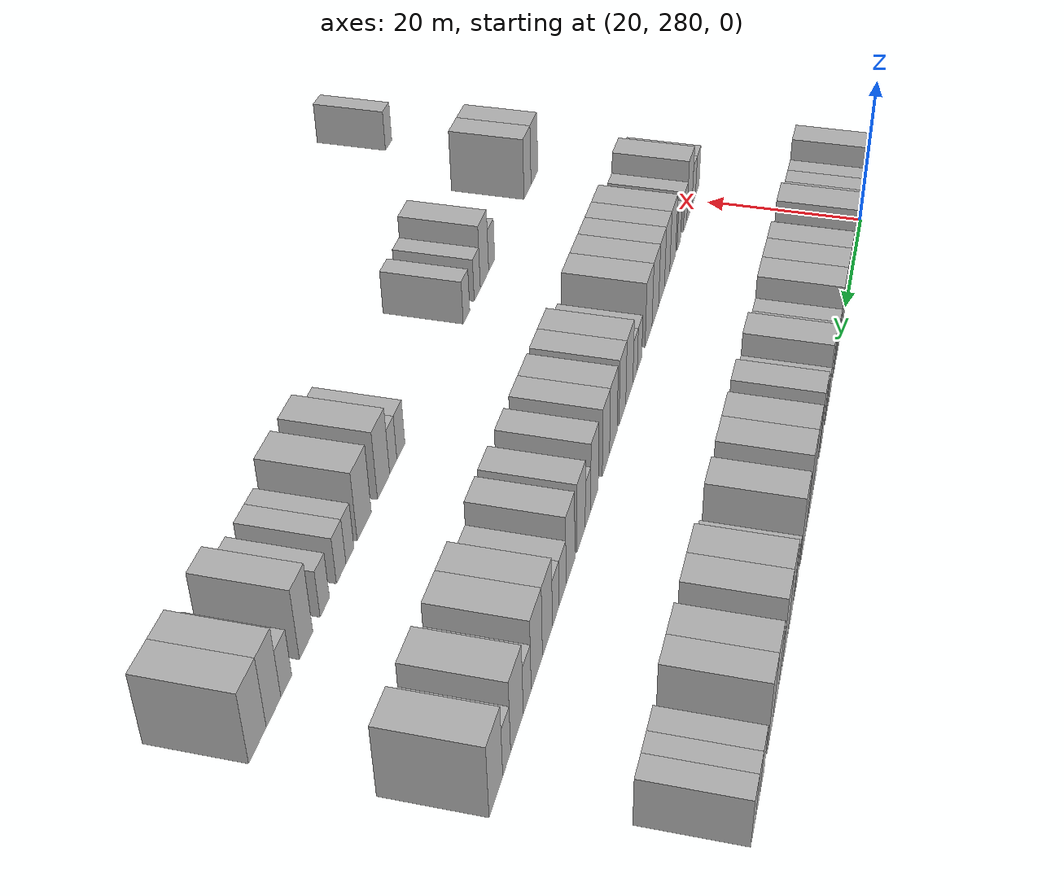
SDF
<sdf version="1.6">
 <world name="default">
  <model name="building_158">
   <static>1</static>
   <pose>25.0000 274.8598 0 0.000000 0.000000 0.000000</pose>
   <link name="link">
    <pose>0 0 4.50 0 0 0</pose>
    <collision name="collision"><geometry><box><size>10.0000 3.9772 9.0000</size></box></geometry></collision>
    <visual name="visual">
     <cast_shadows>0</cast_shadows>
     <geometry><box><size>10.0000 3.9772 9.0000</size></box></geometry>
     <material>
      <script>
       <uri>model://HANNAS_wall/materials/scripts</uri>
       <uri>model://HANNAS_wall/materials/textures</uri>
       <name>vrc/HANNAS_wall</name>
      </script>
     </material>
    </visual>
   </link>
  </model>
  <model name="building_159">
   <static>1</static>
   <pose>25.0000 278.1927 0 0.000000 0.000000 0.000000</pose>
   <link name="link">
    <pose>0 0 3.00 0 0 0</pose>
    <collision name="collision"><geometry><box><size>10.0000 2.6886 6.0000</size></box></geometry></collision>
    <visual name="visual">
     <cast_shadows>0</cast_shadows>
     <geometry><box><size>10.0000 2.6886 6.0000</size></box></geometry>
     <material>
      <script>
       <uri>model://HANNAS_wall/materials/scripts</uri>
       <uri>model://HANNAS_wall/materials/textures</uri>
       <name>vrc/HANNAS_wall</name>
      </script>
     </material>
    </visual>
   </link>
  </model>
  <model name="building_160">
   <static>1</static>
   <pose>25.0000 280.9946 0 0.000000 0.000000 0.000000</pose>
   <link name="link">
    <pose>0 0 3.00 0 0 0</pose>
    <collision name="collision"><geometry><box><size>10.0000 2.9151 6.0000</size></box></geometry></collision>
    <visual name="visual">
     <cast_shadows>0</cast_shadows>
     <geometry><box><size>10.0000 2.9151 6.0000</size></box></geometry>
     <material>
      <script>
       <uri>model://HANNAS_wall/materials/scripts</uri>
       <uri>model://HANNAS_wall/materials/textures</uri>
       <name>vrc/HANNAS_wall</name>
      </script>
     </material>
    </visual>
   </link>
  </model>
  <model name="building_161">
   <static>1</static>
   <pose>25.0000 283.9191 0 0.000000 0.000000 0.000000</pose>
   <link name="link">
    <pose>0 0 3.00 0 0 0</pose>
    <collision name="collision"><geometry><box><size>10.0000 2.9339 6.0000</size></box></geometry></collision>
    <visual name="visual">
     <cast_shadows>0</cast_shadows>
     <geometry><box><size>10.0000 2.9339 6.0000</size></box></geometry>
     <material>
      <script>
       <uri>model://HANNAS_wall/materials/scripts</uri>
       <uri>model://HANNAS_wall/materials/textures</uri>
       <name>vrc/HANNAS_wall</name>
      </script>
     </material>
    </visual>
   </link>
  </model>
  <model name="building_162">
   <static>1</static>
   <pose>25.0000 286.6835 0 0.000000 0.000000 0.000000</pose>
   <link name="link">
    <pose>0 0 3.00 0 0 0</pose>
    <collision name="collision"><geometry><box><size>10.0000 2.5950 6.0000</size></box></geometry></collision>
    <visual name="visual">
     <cast_shadows>0</cast_shadows>
     <geometry><box><size>10.0000 2.5950 6.0000</size></box></geometry>
     <material>
      <script>
       <uri>model://HANNAS_wall/materials/scripts</uri>
       <uri>model://HANNAS_wall/materials/textures</uri>
       <name>vrc/HANNAS_wall</name>
      </script>
     </material>
    </visual>
   </link>
  </model>
  <model name="building_163">
   <static>1</static>
   <pose>25.0000 290.1792 0 0.000000 0.000000 0.000000</pose>
   <link name="link">
    <pose>0 0 4.50 0 0 0</pose>
    <collision name="collision"><geometry><box><size>10.0000 4.3964 9.0000</size></box></geometry></collision>
    <visual name="visual">
     <cast_shadows>0</cast_shadows>
     <geometry><box><size>10.0000 4.3964 9.0000</size></box></geometry>
     <material>
      <script>
       <uri>model://HANNAS_wall/materials/scripts</uri>
       <uri>model://HANNAS_wall/materials/textures</uri>
       <name>vrc/HANNAS_wall</name>
      </script>
     </material>
    </visual>
   </link>
  </model>
  <model name="building_164">
   <static>1</static>
   <pose>25.0000 293.7986 0 0.000000 0.000000 0.000000</pose>
   <link name="link">
    <pose>0 0 3.00 0 0 0</pose>
    <collision name="collision"><geometry><box><size>10.0000 2.8426 6.0000</size></box></geometry></collision>
    <visual name="visual">
     <cast_shadows>0</cast_shadows>
     <geometry><box><size>10.0000 2.8426 6.0000</size></box></geometry>
     <material>
      <script>
       <uri>model://HANNAS_wall/materials/scripts</uri>
       <uri>model://HANNAS_wall/materials/textures</uri>
       <name>vrc/HANNAS_wall</name>
      </script>
     </material>
    </visual>
   </link>
  </model>
  <model name="building_165">
   <static>1</static>
   <pose>25.0000 299.0825 0 0.000000 0.000000 0.000000</pose>
   <link name="link">
    <pose>0 0 4.50 0 0 0</pose>
    <collision name="collision"><geometry><box><size>10.0000 3.7251 9.0000</size></box></geometry></collision>
    <visual name="visual">
     <cast_shadows>0</cast_shadows>
     <geometry><box><size>10.0000 3.7251 9.0000</size></box></geometry>
     <material>
      <script>
       <uri>model://HANNAS_wall/materials/scripts</uri>
       <uri>model://HANNAS_wall/materials/textures</uri>
       <name>vrc/HANNAS_wall</name>
      </script>
     </material>
    </visual>
   </link>
  </model>
  <model name="building_166">
   <static>1</static>
   <pose>25.0000 303.0248 0 0.000000 0.000000 0.000000</pose>
   <link name="link">
    <pose>0 0 4.50 0 0 0</pose>
    <collision name="collision"><geometry><box><size>10.0000 4.1596 9.0000</size></box></geometry></collision>
    <visual name="visual">
     <cast_shadows>0</cast_shadows>
     <geometry><box><size>10.0000 4.1596 9.0000</size></box></geometry>
     <material>
      <script>
       <uri>model://HANNAS_wall/materials/scripts</uri>
       <uri>model://HANNAS_wall/materials/textures</uri>
       <name>vrc/HANNAS_wall</name>
      </script>
     </material>
    </visual>
   </link>
  </model>
  <model name="building_167">
   <static>1</static>
   <pose>25.0000 307.2121 0 0.000000 0.000000 0.000000</pose>
   <link name="link">
    <pose>0 0 4.50 0 0 0</pose>
    <collision name="collision"><geometry><box><size>10.0000 4.2148 9.0000</size></box></geometry></collision>
    <visual name="visual">
     <cast_shadows>0</cast_shadows>
     <geometry><box><size>10.0000 4.2148 9.0000</size></box></geometry>
     <material>
      <script>
       <uri>model://HANNAS_wall/materials/scripts</uri>
       <uri>model://HANNAS_wall/materials/textures</uri>
       <name>vrc/HANNAS_wall</name>
      </script>
     </material>
    </visual>
   </link>
  </model>
  <model name="building_168">
   <static>1</static>
   <pose>25.0000 310.6309 0 0.000000 0.000000 0.000000</pose>
   <link name="link">
    <pose>0 0 3.00 0 0 0</pose>
    <collision name="collision"><geometry><box><size>10.0000 2.6229 6.0000</size></box></geometry></collision>
    <visual name="visual">
     <cast_shadows>0</cast_shadows>
     <geometry><box><size>10.0000 2.6229 6.0000</size></box></geometry>
     <material>
      <script>
       <uri>model://HANNAS_wall/materials/scripts</uri>
       <uri>model://HANNAS_wall/materials/textures</uri>
       <name>vrc/HANNAS_wall</name>
      </script>
     </material>
    </visual>
   </link>
  </model>
  <model name="building_169">
   <static>1</static>
   <pose>25.0000 313.2634 0 0.000000 0.000000 0.000000</pose>
   <link name="link">
    <pose>0 0 3.00 0 0 0</pose>
    <collision name="collision"><geometry><box><size>10.0000 2.6420 6.0000</size></box></geometry></collision>
    <visual name="visual">
     <cast_shadows>0</cast_shadows>
     <geometry><box><size>10.0000 2.6420 6.0000</size></box></geometry>
     <material>
      <script>
       <uri>model://HANNAS_wall/materials/scripts</uri>
       <uri>model://HANNAS_wall/materials/textures</uri>
       <name>vrc/HANNAS_wall</name>
      </script>
     </material>
    </visual>
   </link>
  </model>
  <model name="building_170">
   <static>1</static>
   <pose>25.0000 318.6226 0 0.000000 0.000000 0.000000</pose>
   <link name="link">
    <pose>0 0 4.50 0 0 0</pose>
    <collision name="collision"><geometry><box><size>10.0000 4.0763 9.0000</size></box></geometry></collision>
    <visual name="visual">
     <cast_shadows>0</cast_shadows>
     <geometry><box><size>10.0000 4.0763 9.0000</size></box></geometry>
     <material>
      <script>
       <uri>model://HANNAS_wall/materials/scripts</uri>
       <uri>model://HANNAS_wall/materials/textures</uri>
       <name>vrc/HANNAS_wall</name>
      </script>
     </material>
    </visual>
   </link>
  </model>
  <model name="building_171">
   <static>1</static>
   <pose>25.0000 322.0602 0 0.000000 0.000000 0.000000</pose>
   <link name="link">
    <pose>0 0 3.00 0 0 0</pose>
    <collision name="collision"><geometry><box><size>10.0000 2.7989 6.0000</size></box></geometry></collision>
    <visual name="visual">
     <cast_shadows>0</cast_shadows>
     <geometry><box><size>10.0000 2.7989 6.0000</size></box></geometry>
     <material>
      <script>
       <uri>model://HANNAS_wall/materials/scripts</uri>
       <uri>model://HANNAS_wall/materials/textures</uri>
       <name>vrc/HANNAS_wall</name>
      </script>
     </material>
    </visual>
   </link>
  </model>
  <model name="building_172">
   <static>1</static>
   <pose>25.0000 327.3484 0 0.000000 0.000000 0.000000</pose>
   <link name="link">
    <pose>0 0 4.50 0 0 0</pose>
    <collision name="collision"><geometry><box><size>10.0000 3.7776 9.0000</size></box></geometry></collision>
    <visual name="visual">
     <cast_shadows>0</cast_shadows>
     <geometry><box><size>10.0000 3.7776 9.0000</size></box></geometry>
     <material>
      <script>
       <uri>model://HANNAS_wall/materials/scripts</uri>
       <uri>model://HANNAS_wall/materials/textures</uri>
       <name>vrc/HANNAS_wall</name>
      </script>
     </material>
    </visual>
   </link>
  </model>
  <model name="building_173">
   <static>1</static>
   <pose>25.0000 333.2881 0 0.000000 0.000000 0.000000</pose>
   <link name="link">
    <pose>0 0 4.50 0 0 0</pose>
    <collision name="collision"><geometry><box><size>10.0000 4.1016 9.0000</size></box></geometry></collision>
    <visual name="visual">
     <cast_shadows>0</cast_shadows>
     <geometry><box><size>10.0000 4.1016 9.0000</size></box></geometry>
     <material>
      <script>
       <uri>model://HANNAS_wall/materials/scripts</uri>
       <uri>model://HANNAS_wall/materials/textures</uri>
       <name>vrc/HANNAS_wall</name>
      </script>
     </material>
    </visual>
   </link>
  </model>
  <model name="building_174">
   <static>1</static>
   <pose>25.0000 337.4365 0 0.000000 0.000000 0.000000</pose>
   <link name="link">
    <pose>0 0 4.50 0 0 0</pose>
    <collision name="collision"><geometry><box><size>10.0000 4.1952 9.0000</size></box></geometry></collision>
    <visual name="visual">
     <cast_shadows>0</cast_shadows>
     <geometry><box><size>10.0000 4.1952 9.0000</size></box></geometry>
     <material>
      <script>
       <uri>model://HANNAS_wall/materials/scripts</uri>
       <uri>model://HANNAS_wall/materials/textures</uri>
       <name>vrc/HANNAS_wall</name>
      </script>
     </material>
    </visual>
   </link>
  </model>
  <model name="building_175">
   <static>1</static>
   <pose>25.0000 340.7566 0 0.000000 0.000000 0.000000</pose>
   <link name="link">
    <pose>0 0 3.00 0 0 0</pose>
    <collision name="collision"><geometry><box><size>10.0000 2.4450 6.0000</size></box></geometry></collision>
    <visual name="visual">
     <cast_shadows>0</cast_shadows>
     <geometry><box><size>10.0000 2.4450 6.0000</size></box></geometry>
     <material>
      <script>
       <uri>model://HANNAS_wall/materials/scripts</uri>
       <uri>model://HANNAS_wall/materials/textures</uri>
       <name>vrc/HANNAS_wall</name>
      </script>
     </material>
    </visual>
   </link>
  </model>
  <model name="building_176">
   <static>1</static>
   <pose>25.0000 344.0631 0 0.000000 0.000000 0.000000</pose>
   <link name="link">
    <pose>0 0 4.50 0 0 0</pose>
    <collision name="collision"><geometry><box><size>10.0000 4.1680 9.0000</size></box></geometry></collision>
    <visual name="visual">
     <cast_shadows>0</cast_shadows>
     <geometry><box><size>10.0000 4.1680 9.0000</size></box></geometry>
     <material>
      <script>
       <uri>model://HANNAS_wall/materials/scripts</uri>
       <uri>model://HANNAS_wall/materials/textures</uri>
       <name>vrc/HANNAS_wall</name>
      </script>
     </material>
    </visual>
   </link>
  </model>
  <model name="building_177">
   <static>1</static>
   <pose>25.0000 349.5465 0 0.000000 0.000000 0.000000</pose>
   <link name="link">
    <pose>0 0 3.00 0 0 0</pose>
    <collision name="collision"><geometry><box><size>10.0000 2.7988 6.0000</size></box></geometry></collision>
    <visual name="visual">
     <cast_shadows>0</cast_shadows>
     <geometry><box><size>10.0000 2.7988 6.0000</size></box></geometry>
     <material>
      <script>
       <uri>model://HANNAS_wall/materials/scripts</uri>
       <uri>model://HANNAS_wall/materials/textures</uri>
       <name>vrc/HANNAS_wall</name>
      </script>
     </material>
    </visual>
   </link>
  </model>
  <model name="building_178">
   <static>1</static>
   <pose>25.0000 353.9778 0 0.000000 0.000000 0.000000</pose>
   <link name="link">
    <pose>0 0 4.50 0 0 0</pose>
    <collision name="collision"><geometry><box><size>10.0000 4.0638 9.0000</size></box></geometry></collision>
    <visual name="visual">
     <cast_shadows>0</cast_shadows>
     <geometry><box><size>10.0000 4.0638 9.0000</size></box></geometry>
     <material>
      <script>
       <uri>model://HANNAS_wall/materials/scripts</uri>
       <uri>model://HANNAS_wall/materials/textures</uri>
       <name>vrc/HANNAS_wall</name>
      </script>
     </material>
    </visual>
   </link>
  </model>
  <model name="building_179">
   <static>1</static>
   <pose>25.0000 357.9775 0 0.000000 0.000000 0.000000</pose>
   <link name="link">
    <pose>0 0 4.50 0 0 0</pose>
    <collision name="collision"><geometry><box><size>10.0000 3.9356 9.0000</size></box></geometry></collision>
    <visual name="visual">
     <cast_shadows>0</cast_shadows>
     <geometry><box><size>10.0000 3.9356 9.0000</size></box></geometry>
     <material>
      <script>
       <uri>model://HANNAS_wall/materials/scripts</uri>
       <uri>model://HANNAS_wall/materials/textures</uri>
       <name>vrc/HANNAS_wall</name>
      </script>
     </material>
    </visual>
   </link>
  </model>
  <model name="building_180">
   <static>1</static>
   <pose>25.0000 361.3072 0 0.000000 0.000000 0.000000</pose>
   <link name="link">
    <pose>0 0 3.00 0 0 0</pose>
    <collision name="collision"><geometry><box><size>10.0000 2.7239 6.0000</size></box></geometry></collision>
    <visual name="visual">
     <cast_shadows>0</cast_shadows>
     <geometry><box><size>10.0000 2.7239 6.0000</size></box></geometry>
     <material>
      <script>
       <uri>model://HANNAS_wall/materials/scripts</uri>
       <uri>model://HANNAS_wall/materials/textures</uri>
       <name>vrc/HANNAS_wall</name>
      </script>
     </material>
    </visual>
   </link>
  </model>
  <model name="building_181">
   <static>1</static>
   <pose>25.0000 364.6228 0 0.000000 0.000000 0.000000</pose>
   <link name="link">
    <pose>0 0 4.50 0 0 0</pose>
    <collision name="collision"><geometry><box><size>10.0000 3.9071 9.0000</size></box></geometry></collision>
    <visual name="visual">
     <cast_shadows>0</cast_shadows>
     <geometry><box><size>10.0000 3.9071 9.0000</size></box></geometry>
     <material>
      <script>
       <uri>model://HANNAS_wall/materials/scripts</uri>
       <uri>model://HANNAS_wall/materials/textures</uri>
       <name>vrc/HANNAS_wall</name>
      </script>
     </material>
    </visual>
   </link>
  </model>
  <model name="building_182">
   <static>1</static>
   <pose>25.0000 368.4020 0 0.000000 0.000000 0.000000</pose>
   <link name="link">
    <pose>0 0 4.50 0 0 0</pose>
    <collision name="collision"><geometry><box><size>10.0000 3.6515 9.0000</size></box></geometry></collision>
    <visual name="visual">
     <cast_shadows>0</cast_shadows>
     <geometry><box><size>10.0000 3.6515 9.0000</size></box></geometry>
     <material>
      <script>
       <uri>model://HANNAS_wall/materials/scripts</uri>
       <uri>model://HANNAS_wall/materials/textures</uri>
       <name>vrc/HANNAS_wall</name>
      </script>
     </material>
    </visual>
   </link>
  </model>
  <model name="building_183">
   <static>1</static>
   <pose>25.0000 373.6578 0 0.000000 0.000000 0.000000</pose>
   <link name="link">
    <pose>0 0 3.00 0 0 0</pose>
    <collision name="collision"><geometry><box><size>10.0000 2.8600 6.0000</size></box></geometry></collision>
    <visual name="visual">
     <cast_shadows>0</cast_shadows>
     <geometry><box><size>10.0000 2.8600 6.0000</size></box></geometry>
     <material>
      <script>
       <uri>model://HANNAS_wall/materials/scripts</uri>
       <uri>model://HANNAS_wall/materials/textures</uri>
       <name>vrc/HANNAS_wall</name>
      </script>
     </material>
    </visual>
   </link>
  </model>
  <model name="building_184">
   <static>1</static>
   <pose>25.0000 376.3115 0 0.000000 0.000000 0.000000</pose>
   <link name="link">
    <pose>0 0 3.00 0 0 0</pose>
    <collision name="collision"><geometry><box><size>10.0000 2.4475 6.0000</size></box></geometry></collision>
    <visual name="visual">
     <cast_shadows>0</cast_shadows>
     <geometry><box><size>10.0000 2.4475 6.0000</size></box></geometry>
     <material>
      <script>
       <uri>model://HANNAS_wall/materials/scripts</uri>
       <uri>model://HANNAS_wall/materials/textures</uri>
       <name>vrc/HANNAS_wall</name>
      </script>
     </material>
    </visual>
   </link>
  </model>
  <model name="building_185">
   <static>1</static>
   <pose>25.0000 378.9467 0 0.000000 0.000000 0.000000</pose>
   <link name="link">
    <pose>0 0 3.00 0 0 0</pose>
    <collision name="collision"><geometry><box><size>10.0000 2.8230 6.0000</size></box></geometry></collision>
    <visual name="visual">
     <cast_shadows>0</cast_shadows>
     <geometry><box><size>10.0000 2.8230 6.0000</size></box></geometry>
     <material>
      <script>
       <uri>model://HANNAS_wall/materials/scripts</uri>
       <uri>model://HANNAS_wall/materials/textures</uri>
       <name>vrc/HANNAS_wall</name>
      </script>
     </material>
    </visual>
   </link>
  </model>
  <model name="building_349">
   <static>1</static>
   <pose>47.0000 277.2174 0 0.000000 0.000000 0.000000</pose>
   <link name="link">
    <pose>0 0 3.00 0 0 0</pose>
    <collision name="collision"><geometry><box><size>10.0000 2.8532 6.0000</size></box></geometry></collision>
    <visual name="visual">
     <cast_shadows>0</cast_shadows>
     <geometry><box><size>10.0000 2.8532 6.0000</size></box></geometry>
     <material>
      <script>
       <uri>model://HANNAS_wall/materials/scripts</uri>
       <uri>model://HANNAS_wall/materials/textures</uri>
       <name>vrc/HANNAS_wall</name>
      </script>
     </material>
    </visual>
   </link>
  </model>
  <model name="building_350">
   <static>1</static>
   <pose>47.0000 280.0356 0 0.000000 0.000000 0.000000</pose>
   <link name="link">
    <pose>0 0 3.00 0 0 0</pose>
    <collision name="collision"><geometry><box><size>10.0000 2.7831 6.0000</size></box></geometry></collision>
    <visual name="visual">
     <cast_shadows>0</cast_shadows>
     <geometry><box><size>10.0000 2.7831 6.0000</size></box></geometry>
     <material>
      <script>
       <uri>model://HANNAS_wall/materials/scripts</uri>
       <uri>model://HANNAS_wall/materials/textures</uri>
       <name>vrc/HANNAS_wall</name>
      </script>
     </material>
    </visual>
   </link>
  </model>
  <model name="building_351">
   <static>1</static>
   <pose>47.0000 283.4116 0 0.000000 0.000000 0.000000</pose>
   <link name="link">
    <pose>0 0 4.50 0 0 0</pose>
    <collision name="collision"><geometry><box><size>10.0000 3.9688 9.0000</size></box></geometry></collision>
    <visual name="visual">
     <cast_shadows>0</cast_shadows>
     <geometry><box><size>10.0000 3.9688 9.0000</size></box></geometry>
     <material>
      <script>
       <uri>model://HANNAS_wall/materials/scripts</uri>
       <uri>model://HANNAS_wall/materials/textures</uri>
       <name>vrc/HANNAS_wall</name>
      </script>
     </material>
    </visual>
   </link>
  </model>
  <model name="building_352">
   <static>1</static>
   <pose>47.0000 286.7091 0 0.000000 0.000000 0.000000</pose>
   <link name="link">
    <pose>0 0 3.00 0 0 0</pose>
    <collision name="collision"><geometry><box><size>10.0000 2.6261 6.0000</size></box></geometry></collision>
    <visual name="visual">
     <cast_shadows>0</cast_shadows>
     <geometry><box><size>10.0000 2.6261 6.0000</size></box></geometry>
     <material>
      <script>
       <uri>model://HANNAS_wall/materials/scripts</uri>
       <uri>model://HANNAS_wall/materials/textures</uri>
       <name>vrc/HANNAS_wall</name>
      </script>
     </material>
    </visual>
   </link>
  </model>
  <model name="building_353">
   <static>1</static>
   <pose>47.0000 291.2879 0 0.000000 0.000000 0.000000</pose>
   <link name="link">
    <pose>0 0 3.00 0 0 0</pose>
    <collision name="collision"><geometry><box><size>10.0000 2.5314 6.0000</size></box></geometry></collision>
    <visual name="visual">
     <cast_shadows>0</cast_shadows>
     <geometry><box><size>10.0000 2.5314 6.0000</size></box></geometry>
     <material>
      <script>
       <uri>model://HANNAS_wall/materials/scripts</uri>
       <uri>model://HANNAS_wall/materials/textures</uri>
       <name>vrc/HANNAS_wall</name>
      </script>
     </material>
    </visual>
   </link>
  </model>
  <model name="building_354">
   <static>1</static>
   <pose>47.0000 295.6176 0 0.000000 0.000000 0.000000</pose>
   <link name="link">
    <pose>0 0 4.50 0 0 0</pose>
    <collision name="collision"><geometry><box><size>10.0000 4.1281 9.0000</size></box></geometry></collision>
    <visual name="visual">
     <cast_shadows>0</cast_shadows>
     <geometry><box><size>10.0000 4.1281 9.0000</size></box></geometry>
     <material>
      <script>
       <uri>model://HANNAS_wall/materials/scripts</uri>
       <uri>model://HANNAS_wall/materials/textures</uri>
       <name>vrc/HANNAS_wall</name>
      </script>
     </material>
    </visual>
   </link>
  </model>
  <model name="building_355">
   <static>1</static>
   <pose>47.0000 299.4817 0 0.000000 0.000000 0.000000</pose>
   <link name="link">
    <pose>0 0 4.50 0 0 0</pose>
    <collision name="collision"><geometry><box><size>10.0000 3.6000 9.0000</size></box></geometry></collision>
    <visual name="visual">
     <cast_shadows>0</cast_shadows>
     <geometry><box><size>10.0000 3.6000 9.0000</size></box></geometry>
     <material>
      <script>
       <uri>model://HANNAS_wall/materials/scripts</uri>
       <uri>model://HANNAS_wall/materials/textures</uri>
       <name>vrc/HANNAS_wall</name>
      </script>
     </material>
    </visual>
   </link>
  </model>
  <model name="building_356">
   <static>1</static>
   <pose>47.0000 303.2065 0 0.000000 0.000000 0.000000</pose>
   <link name="link">
    <pose>0 0 4.50 0 0 0</pose>
    <collision name="collision"><geometry><box><size>10.0000 3.8496 9.0000</size></box></geometry></collision>
    <visual name="visual">
     <cast_shadows>0</cast_shadows>
     <geometry><box><size>10.0000 3.8496 9.0000</size></box></geometry>
     <material>
      <script>
       <uri>model://HANNAS_wall/materials/scripts</uri>
       <uri>model://HANNAS_wall/materials/textures</uri>
       <name>vrc/HANNAS_wall</name>
      </script>
     </material>
    </visual>
   </link>
  </model>
  <model name="building_357">
   <static>1</static>
   <pose>47.0000 307.2225 0 0.000000 0.000000 0.000000</pose>
   <link name="link">
    <pose>0 0 4.50 0 0 0</pose>
    <collision name="collision"><geometry><box><size>10.0000 4.1824 9.0000</size></box></geometry></collision>
    <visual name="visual">
     <cast_shadows>0</cast_shadows>
     <geometry><box><size>10.0000 4.1824 9.0000</size></box></geometry>
     <material>
      <script>
       <uri>model://HANNAS_wall/materials/scripts</uri>
       <uri>model://HANNAS_wall/materials/textures</uri>
       <name>vrc/HANNAS_wall</name>
      </script>
     </material>
    </visual>
   </link>
  </model>
  <model name="building_358">
   <static>1</static>
   <pose>47.0000 311.4446 0 0.000000 0.000000 0.000000</pose>
   <link name="link">
    <pose>0 0 4.50 0 0 0</pose>
    <collision name="collision"><geometry><box><size>10.0000 4.2619 9.0000</size></box></geometry></collision>
    <visual name="visual">
     <cast_shadows>0</cast_shadows>
     <geometry><box><size>10.0000 4.2619 9.0000</size></box></geometry>
     <material>
      <script>
       <uri>model://HANNAS_wall/materials/scripts</uri>
       <uri>model://HANNAS_wall/materials/textures</uri>
       <name>vrc/HANNAS_wall</name>
      </script>
     </material>
    </visual>
   </link>
  </model>
  <model name="building_359">
   <static>1</static>
   <pose>47.0000 316.9096 0 0.000000 0.000000 0.000000</pose>
   <link name="link">
    <pose>0 0 3.00 0 0 0</pose>
    <collision name="collision"><geometry><box><size>10.0000 2.6680 6.0000</size></box></geometry></collision>
    <visual name="visual">
     <cast_shadows>0</cast_shadows>
     <geometry><box><size>10.0000 2.6680 6.0000</size></box></geometry>
     <material>
      <script>
       <uri>model://HANNAS_wall/materials/scripts</uri>
       <uri>model://HANNAS_wall/materials/textures</uri>
       <name>vrc/HANNAS_wall</name>
      </script>
     </material>
    </visual>
   </link>
  </model>
  <model name="building_360">
   <static>1</static>
   <pose>47.0000 319.5366 0 0.000000 0.000000 0.000000</pose>
   <link name="link">
    <pose>0 0 3.00 0 0 0</pose>
    <collision name="collision"><geometry><box><size>10.0000 2.5860 6.0000</size></box></geometry></collision>
    <visual name="visual">
     <cast_shadows>0</cast_shadows>
     <geometry><box><size>10.0000 2.5860 6.0000</size></box></geometry>
     <material>
      <script>
       <uri>model://HANNAS_wall/materials/scripts</uri>
       <uri>model://HANNAS_wall/materials/textures</uri>
       <name>vrc/HANNAS_wall</name>
      </script>
     </material>
    </visual>
   </link>
  </model>
  <model name="building_361">
   <static>1</static>
   <pose>47.0000 322.8267 0 0.000000 0.000000 0.000000</pose>
   <link name="link">
    <pose>0 0 4.50 0 0 0</pose>
    <collision name="collision"><geometry><box><size>10.0000 3.9941 9.0000</size></box></geometry></collision>
    <visual name="visual">
     <cast_shadows>0</cast_shadows>
     <geometry><box><size>10.0000 3.9941 9.0000</size></box></geometry>
     <material>
      <script>
       <uri>model://HANNAS_wall/materials/scripts</uri>
       <uri>model://HANNAS_wall/materials/textures</uri>
       <name>vrc/HANNAS_wall</name>
      </script>
     </material>
    </visual>
   </link>
  </model>
  <model name="building_362">
   <static>1</static>
   <pose>47.0000 326.6655 0 0.000000 0.000000 0.000000</pose>
   <link name="link">
    <pose>0 0 4.50 0 0 0</pose>
    <collision name="collision"><geometry><box><size>10.0000 3.6834 9.0000</size></box></geometry></collision>
    <visual name="visual">
     <cast_shadows>0</cast_shadows>
     <geometry><box><size>10.0000 3.6834 9.0000</size></box></geometry>
     <material>
      <script>
       <uri>model://HANNAS_wall/materials/scripts</uri>
       <uri>model://HANNAS_wall/materials/textures</uri>
       <name>vrc/HANNAS_wall</name>
      </script>
     </material>
    </visual>
   </link>
  </model>
  <model name="building_363">
   <static>1</static>
   <pose>47.0000 331.4882 0 0.000000 0.000000 0.000000</pose>
   <link name="link">
    <pose>0 0 4.50 0 0 0</pose>
    <collision name="collision"><geometry><box><size>10.0000 3.9621 9.0000</size></box></geometry></collision>
    <visual name="visual">
     <cast_shadows>0</cast_shadows>
     <geometry><box><size>10.0000 3.9621 9.0000</size></box></geometry>
     <material>
      <script>
       <uri>model://HANNAS_wall/materials/scripts</uri>
       <uri>model://HANNAS_wall/materials/textures</uri>
       <name>vrc/HANNAS_wall</name>
      </script>
     </material>
    </visual>
   </link>
  </model>
  <model name="building_364">
   <static>1</static>
   <pose>47.0000 335.3095 0 0.000000 0.000000 0.000000</pose>
   <link name="link">
    <pose>0 0 4.50 0 0 0</pose>
    <collision name="collision"><geometry><box><size>10.0000 3.6805 9.0000</size></box></geometry></collision>
    <visual name="visual">
     <cast_shadows>0</cast_shadows>
     <geometry><box><size>10.0000 3.6805 9.0000</size></box></geometry>
     <material>
      <script>
       <uri>model://HANNAS_wall/materials/scripts</uri>
       <uri>model://HANNAS_wall/materials/textures</uri>
       <name>vrc/HANNAS_wall</name>
      </script>
     </material>
    </visual>
   </link>
  </model>
  <model name="building_365">
   <static>1</static>
   <pose>47.0000 340.9718 0 0.000000 0.000000 0.000000</pose>
   <link name="link">
    <pose>0 0 4.50 0 0 0</pose>
    <collision name="collision"><geometry><box><size>10.0000 3.6441 9.0000</size></box></geometry></collision>
    <visual name="visual">
     <cast_shadows>0</cast_shadows>
     <geometry><box><size>10.0000 3.6441 9.0000</size></box></geometry>
     <material>
      <script>
       <uri>model://HANNAS_wall/materials/scripts</uri>
       <uri>model://HANNAS_wall/materials/textures</uri>
       <name>vrc/HANNAS_wall</name>
      </script>
     </material>
    </visual>
   </link>
  </model>
  <model name="building_366">
   <static>1</static>
   <pose>47.0000 344.0699 0 0.000000 0.000000 0.000000</pose>
   <link name="link">
    <pose>0 0 3.00 0 0 0</pose>
    <collision name="collision"><geometry><box><size>10.0000 2.5520 6.0000</size></box></geometry></collision>
    <visual name="visual">
     <cast_shadows>0</cast_shadows>
     <geometry><box><size>10.0000 2.5520 6.0000</size></box></geometry>
     <material>
      <script>
       <uri>model://HANNAS_wall/materials/scripts</uri>
       <uri>model://HANNAS_wall/materials/textures</uri>
       <name>vrc/HANNAS_wall</name>
      </script>
     </material>
    </visual>
   </link>
  </model>
  <model name="building_367">
   <static>1</static>
   <pose>47.0000 347.2153 0 0.000000 0.000000 0.000000</pose>
   <link name="link">
    <pose>0 0 4.50 0 0 0</pose>
    <collision name="collision"><geometry><box><size>10.0000 3.7388 9.0000</size></box></geometry></collision>
    <visual name="visual">
     <cast_shadows>0</cast_shadows>
     <geometry><box><size>10.0000 3.7388 9.0000</size></box></geometry>
     <material>
      <script>
       <uri>model://HANNAS_wall/materials/scripts</uri>
       <uri>model://HANNAS_wall/materials/textures</uri>
       <name>vrc/HANNAS_wall</name>
      </script>
     </material>
    </visual>
   </link>
  </model>
  <model name="building_368">
   <static>1</static>
   <pose>47.0000 351.9941 0 0.000000 0.000000 0.000000</pose>
   <link name="link">
    <pose>0 0 4.50 0 0 0</pose>
    <collision name="collision"><geometry><box><size>10.0000 3.8189 9.0000</size></box></geometry></collision>
    <visual name="visual">
     <cast_shadows>0</cast_shadows>
     <geometry><box><size>10.0000 3.8189 9.0000</size></box></geometry>
     <material>
      <script>
       <uri>model://HANNAS_wall/materials/scripts</uri>
       <uri>model://HANNAS_wall/materials/textures</uri>
       <name>vrc/HANNAS_wall</name>
      </script>
     </material>
    </visual>
   </link>
  </model>
  <model name="building_369">
   <static>1</static>
   <pose>47.0000 355.3427 0 0.000000 0.000000 0.000000</pose>
   <link name="link">
    <pose>0 0 3.00 0 0 0</pose>
    <collision name="collision"><geometry><box><size>10.0000 2.8782 6.0000</size></box></geometry></collision>
    <visual name="visual">
     <cast_shadows>0</cast_shadows>
     <geometry><box><size>10.0000 2.8782 6.0000</size></box></geometry>
     <material>
      <script>
       <uri>model://HANNAS_wall/materials/scripts</uri>
       <uri>model://HANNAS_wall/materials/textures</uri>
       <name>vrc/HANNAS_wall</name>
      </script>
     </material>
    </visual>
   </link>
  </model>
  <model name="building_370">
   <static>1</static>
   <pose>47.0000 358.1746 0 0.000000 0.000000 0.000000</pose>
   <link name="link">
    <pose>0 0 3.00 0 0 0</pose>
    <collision name="collision"><geometry><box><size>10.0000 2.7856 6.0000</size></box></geometry></collision>
    <visual name="visual">
     <cast_shadows>0</cast_shadows>
     <geometry><box><size>10.0000 2.7856 6.0000</size></box></geometry>
     <material>
      <script>
       <uri>model://HANNAS_wall/materials/scripts</uri>
       <uri>model://HANNAS_wall/materials/textures</uri>
       <name>vrc/HANNAS_wall</name>
      </script>
     </material>
    </visual>
   </link>
  </model>
  <model name="building_371">
   <static>1</static>
   <pose>47.0000 361.5380 0 0.000000 0.000000 0.000000</pose>
   <link name="link">
    <pose>0 0 4.50 0 0 0</pose>
    <collision name="collision"><geometry><box><size>10.0000 3.9412 9.0000</size></box></geometry></collision>
    <visual name="visual">
     <cast_shadows>0</cast_shadows>
     <geometry><box><size>10.0000 3.9412 9.0000</size></box></geometry>
     <material>
      <script>
       <uri>model://HANNAS_wall/materials/scripts</uri>
       <uri>model://HANNAS_wall/materials/textures</uri>
       <name>vrc/HANNAS_wall</name>
      </script>
     </material>
    </visual>
   </link>
  </model>
  <model name="building_372">
   <static>1</static>
   <pose>47.0000 365.6394 0 0.000000 0.000000 0.000000</pose>
   <link name="link">
    <pose>0 0 4.50 0 0 0</pose>
    <collision name="collision"><geometry><box><size>10.0000 4.2617 9.0000</size></box></geometry></collision>
    <visual name="visual">
     <cast_shadows>0</cast_shadows>
     <geometry><box><size>10.0000 4.2617 9.0000</size></box></geometry>
     <material>
      <script>
       <uri>model://HANNAS_wall/materials/scripts</uri>
       <uri>model://HANNAS_wall/materials/textures</uri>
       <name>vrc/HANNAS_wall</name>
      </script>
     </material>
    </visual>
   </link>
  </model>
  <model name="building_373">
   <static>1</static>
   <pose>47.0000 369.2258 0 0.000000 0.000000 0.000000</pose>
   <link name="link">
    <pose>0 0 3.00 0 0 0</pose>
    <collision name="collision"><geometry><box><size>10.0000 2.9110 6.0000</size></box></geometry></collision>
    <visual name="visual">
     <cast_shadows>0</cast_shadows>
     <geometry><box><size>10.0000 2.9110 6.0000</size></box></geometry>
     <material>
      <script>
       <uri>model://HANNAS_wall/materials/scripts</uri>
       <uri>model://HANNAS_wall/materials/textures</uri>
       <name>vrc/HANNAS_wall</name>
      </script>
     </material>
    </visual>
   </link>
  </model>
  <model name="building_374">
   <static>1</static>
   <pose>47.0000 372.9141 0 0.000000 0.000000 0.000000</pose>
   <link name="link">
    <pose>0 0 4.50 0 0 0</pose>
    <collision name="collision"><geometry><box><size>10.0000 4.4656 9.0000</size></box></geometry></collision>
    <visual name="visual">
     <cast_shadows>0</cast_shadows>
     <geometry><box><size>10.0000 4.4656 9.0000</size></box></geometry>
     <material>
      <script>
       <uri>model://HANNAS_wall/materials/scripts</uri>
       <uri>model://HANNAS_wall/materials/textures</uri>
       <name>vrc/HANNAS_wall</name>
      </script>
     </material>
    </visual>
   </link>
  </model>
  <model name="building_375">
   <static>1</static>
   <pose>47.0000 376.4973 0 0.000000 0.000000 0.000000</pose>
   <link name="link">
    <pose>0 0 3.00 0 0 0</pose>
    <collision name="collision"><geometry><box><size>10.0000 2.7008 6.0000</size></box></geometry></collision>
    <visual name="visual">
     <cast_shadows>0</cast_shadows>
     <geometry><box><size>10.0000 2.7008 6.0000</size></box></geometry>
     <material>
      <script>
       <uri>model://HANNAS_wall/materials/scripts</uri>
       <uri>model://HANNAS_wall/materials/textures</uri>
       <name>vrc/HANNAS_wall</name>
      </script>
     </material>
    </visual>
   </link>
  </model>
  <model name="building_376">
   <static>1</static>
   <pose>47.0000 380.0911 0 0.000000 0.000000 0.000000</pose>
   <link name="link">
    <pose>0 0 4.50 0 0 0</pose>
    <collision name="collision"><geometry><box><size>10.0000 4.4870 9.0000</size></box></geometry></collision>
    <visual name="visual">
     <cast_shadows>0</cast_shadows>
     <geometry><box><size>10.0000 4.4870 9.0000</size></box></geometry>
     <material>
      <script>
       <uri>model://HANNAS_wall/materials/scripts</uri>
       <uri>model://HANNAS_wall/materials/textures</uri>
       <name>vrc/HANNAS_wall</name>
      </script>
     </material>
    </visual>
   </link>
  </model>
  <model name="building_550">
   <static>1</static>
   <pose>69.0000 279.0312 0 0.000000 0.000000 0.000000</pose>
   <link name="link">
    <pose>0 0 4.50 0 0 0</pose>
    <collision name="collision"><geometry><box><size>10.0000 3.7322 9.0000</size></box></geometry></collision>
    <visual name="visual">
     <cast_shadows>0</cast_shadows>
     <geometry><box><size>10.0000 3.7322 9.0000</size></box></geometry>
     <material>
      <script>
       <uri>model://HANNAS_wall/materials/scripts</uri>
       <uri>model://HANNAS_wall/materials/textures</uri>
       <name>vrc/HANNAS_wall</name>
      </script>
     </material>
    </visual>
   </link>
  </model>
  <model name="building_551">
   <static>1</static>
   <pose>69.0000 282.7975 0 0.000000 0.000000 0.000000</pose>
   <link name="link">
    <pose>0 0 4.50 0 0 0</pose>
    <collision name="collision"><geometry><box><size>10.0000 3.8003 9.0000</size></box></geometry></collision>
    <visual name="visual">
     <cast_shadows>0</cast_shadows>
     <geometry><box><size>10.0000 3.8003 9.0000</size></box></geometry>
     <material>
      <script>
       <uri>model://HANNAS_wall/materials/scripts</uri>
       <uri>model://HANNAS_wall/materials/textures</uri>
       <name>vrc/HANNAS_wall</name>
      </script>
     </material>
    </visual>
   </link>
  </model>
  <model name="building_552">
   <static>1</static>
   <pose>69.0000 300.9358 0 0.000000 0.000000 0.000000</pose>
   <link name="link">
    <pose>0 0 3.00 0 0 0</pose>
    <collision name="collision"><geometry><box><size>10.0000 2.8254 6.0000</size></box></geometry></collision>
    <visual name="visual">
     <cast_shadows>0</cast_shadows>
     <geometry><box><size>10.0000 2.8254 6.0000</size></box></geometry>
     <material>
      <script>
       <uri>model://HANNAS_wall/materials/scripts</uri>
       <uri>model://HANNAS_wall/materials/textures</uri>
       <name>vrc/HANNAS_wall</name>
      </script>
     </material>
    </visual>
   </link>
  </model>
  <model name="building_553">
   <static>1</static>
   <pose>69.0000 304.2806 0 0.000000 0.000000 0.000000</pose>
   <link name="link">
    <pose>0 0 4.50 0 0 0</pose>
    <collision name="collision"><geometry><box><size>10.0000 3.8642 9.0000</size></box></geometry></collision>
    <visual name="visual">
     <cast_shadows>0</cast_shadows>
     <geometry><box><size>10.0000 3.8642 9.0000</size></box></geometry>
     <material>
      <script>
       <uri>model://HANNAS_wall/materials/scripts</uri>
       <uri>model://HANNAS_wall/materials/textures</uri>
       <name>vrc/HANNAS_wall</name>
      </script>
     </material>
    </visual>
   </link>
  </model>
  <model name="building_554">
   <static>1</static>
   <pose>69.0000 307.5868 0 0.000000 0.000000 0.000000</pose>
   <link name="link">
    <pose>0 0 3.00 0 0 0</pose>
    <collision name="collision"><geometry><box><size>10.0000 2.7481 6.0000</size></box></geometry></collision>
    <visual name="visual">
     <cast_shadows>0</cast_shadows>
     <geometry><box><size>10.0000 2.7481 6.0000</size></box></geometry>
     <material>
      <script>
       <uri>model://HANNAS_wall/materials/scripts</uri>
       <uri>model://HANNAS_wall/materials/textures</uri>
       <name>vrc/HANNAS_wall</name>
      </script>
     </material>
    </visual>
   </link>
  </model>
  <model name="building_555">
   <static>1</static>
   <pose>69.0000 312.3800 0 0.000000 0.000000 0.000000</pose>
   <link name="link">
    <pose>0 0 3.00 0 0 0</pose>
    <collision name="collision"><geometry><box><size>10.0000 2.8383 6.0000</size></box></geometry></collision>
    <visual name="visual">
     <cast_shadows>0</cast_shadows>
     <geometry><box><size>10.0000 2.8383 6.0000</size></box></geometry>
     <material>
      <script>
       <uri>model://HANNAS_wall/materials/scripts</uri>
       <uri>model://HANNAS_wall/materials/textures</uri>
       <name>vrc/HANNAS_wall</name>
      </script>
     </material>
    </visual>
   </link>
  </model>
  <model name="building_556">
   <static>1</static>
   <pose>69.0000 338.0168 0 0.000000 0.000000 0.000000</pose>
   <link name="link">
    <pose>0 0 3.00 0 0 0</pose>
    <collision name="collision"><geometry><box><size>10.0000 2.8118 6.0000</size></box></geometry></collision>
    <visual name="visual">
     <cast_shadows>0</cast_shadows>
     <geometry><box><size>10.0000 2.8118 6.0000</size></box></geometry>
     <material>
      <script>
       <uri>model://HANNAS_wall/materials/scripts</uri>
       <uri>model://HANNAS_wall/materials/textures</uri>
       <name>vrc/HANNAS_wall</name>
      </script>
     </material>
    </visual>
   </link>
  </model>
  <model name="building_557">
   <static>1</static>
   <pose>69.0000 340.6561 0 0.000000 0.000000 0.000000</pose>
   <link name="link">
    <pose>0 0 3.00 0 0 0</pose>
    <collision name="collision"><geometry><box><size>10.0000 2.4668 6.0000</size></box></geometry></collision>
    <visual name="visual">
     <cast_shadows>0</cast_shadows>
     <geometry><box><size>10.0000 2.4668 6.0000</size></box></geometry>
     <material>
      <script>
       <uri>model://HANNAS_wall/materials/scripts</uri>
       <uri>model://HANNAS_wall/materials/textures</uri>
       <name>vrc/HANNAS_wall</name>
      </script>
     </material>
    </visual>
   </link>
  </model>
  <model name="building_558">
   <static>1</static>
   <pose>69.0000 343.9300 0 0.000000 0.000000 0.000000</pose>
   <link name="link">
    <pose>0 0 4.50 0 0 0</pose>
    <collision name="collision"><geometry><box><size>10.0000 4.0810 9.0000</size></box></geometry></collision>
    <visual name="visual">
     <cast_shadows>0</cast_shadows>
     <geometry><box><size>10.0000 4.0810 9.0000</size></box></geometry>
     <material>
      <script>
       <uri>model://HANNAS_wall/materials/scripts</uri>
       <uri>model://HANNAS_wall/materials/textures</uri>
       <name>vrc/HANNAS_wall</name>
      </script>
     </material>
    </visual>
   </link>
  </model>
  <model name="building_559">
   <static>1</static>
   <pose>69.0000 350.1933 0 0.000000 0.000000 0.000000</pose>
   <link name="link">
    <pose>0 0 4.50 0 0 0</pose>
    <collision name="collision"><geometry><box><size>10.0000 4.4455 9.0000</size></box></geometry></collision>
    <visual name="visual">
     <cast_shadows>0</cast_shadows>
     <geometry><box><size>10.0000 4.4455 9.0000</size></box></geometry>
     <material>
      <script>
       <uri>model://HANNAS_wall/materials/scripts</uri>
       <uri>model://HANNAS_wall/materials/textures</uri>
       <name>vrc/HANNAS_wall</name>
      </script>
     </material>
    </visual>
   </link>
  </model>
  <model name="building_560">
   <static>1</static>
   <pose>69.0000 354.6300 0 0.000000 0.000000 0.000000</pose>
   <link name="link">
    <pose>0 0 3.00 0 0 0</pose>
    <collision name="collision"><geometry><box><size>10.0000 2.4279 6.0000</size></box></geometry></collision>
    <visual name="visual">
     <cast_shadows>0</cast_shadows>
     <geometry><box><size>10.0000 2.4279 6.0000</size></box></geometry>
     <material>
      <script>
       <uri>model://HANNAS_wall/materials/scripts</uri>
       <uri>model://HANNAS_wall/materials/textures</uri>
       <name>vrc/HANNAS_wall</name>
      </script>
     </material>
    </visual>
   </link>
  </model>
  <model name="building_561">
   <static>1</static>
   <pose>69.0000 357.2528 0 0.000000 0.000000 0.000000</pose>
   <link name="link">
    <pose>0 0 3.00 0 0 0</pose>
    <collision name="collision"><geometry><box><size>10.0000 2.8177 6.0000</size></box></geometry></collision>
    <visual name="visual">
     <cast_shadows>0</cast_shadows>
     <geometry><box><size>10.0000 2.8177 6.0000</size></box></geometry>
     <material>
      <script>
       <uri>model://HANNAS_wall/materials/scripts</uri>
       <uri>model://HANNAS_wall/materials/textures</uri>
       <name>vrc/HANNAS_wall</name>
      </script>
     </material>
    </visual>
   </link>
  </model>
  <model name="building_562">
   <static>1</static>
   <pose>69.0000 361.9917 0 0.000000 0.000000 0.000000</pose>
   <link name="link">
    <pose>0 0 3.00 0 0 0</pose>
    <collision name="collision"><geometry><box><size>10.0000 2.6601 6.0000</size></box></geometry></collision>
    <visual name="visual">
     <cast_shadows>0</cast_shadows>
     <geometry><box><size>10.0000 2.6601 6.0000</size></box></geometry>
     <material>
      <script>
       <uri>model://HANNAS_wall/materials/scripts</uri>
       <uri>model://HANNAS_wall/materials/textures</uri>
       <name>vrc/HANNAS_wall</name>
      </script>
     </material>
    </visual>
   </link>
  </model>
  <model name="building_563">
   <static>1</static>
   <pose>69.0000 367.1264 0 0.000000 0.000000 0.000000</pose>
   <link name="link">
    <pose>0 0 4.50 0 0 0</pose>
    <collision name="collision"><geometry><box><size>10.0000 3.6094 9.0000</size></box></geometry></collision>
    <visual name="visual">
     <cast_shadows>0</cast_shadows>
     <geometry><box><size>10.0000 3.6094 9.0000</size></box></geometry>
     <material>
      <script>
       <uri>model://HANNAS_wall/materials/scripts</uri>
       <uri>model://HANNAS_wall/materials/textures</uri>
       <name>vrc/HANNAS_wall</name>
      </script>
     </material>
    </visual>
   </link>
  </model>
  <model name="building_564">
   <static>1</static>
   <pose>69.0000 372.3062 0 0.000000 0.000000 0.000000</pose>
   <link name="link">
    <pose>0 0 3.00 0 0 0</pose>
    <collision name="collision"><geometry><box><size>10.0000 2.7503 6.0000</size></box></geometry></collision>
    <visual name="visual">
     <cast_shadows>0</cast_shadows>
     <geometry><box><size>10.0000 2.7503 6.0000</size></box></geometry>
     <material>
      <script>
       <uri>model://HANNAS_wall/materials/scripts</uri>
       <uri>model://HANNAS_wall/materials/textures</uri>
       <name>vrc/HANNAS_wall</name>
      </script>
     </material>
    </visual>
   </link>
  </model>
  <model name="building_565">
   <static>1</static>
   <pose>69.0000 375.4889 0 0.000000 0.000000 0.000000</pose>
   <link name="link">
    <pose>0 0 4.50 0 0 0</pose>
    <collision name="collision"><geometry><box><size>10.0000 3.6151 9.0000</size></box></geometry></collision>
    <visual name="visual">
     <cast_shadows>0</cast_shadows>
     <geometry><box><size>10.0000 3.6151 9.0000</size></box></geometry>
     <material>
      <script>
       <uri>model://HANNAS_wall/materials/scripts</uri>
       <uri>model://HANNAS_wall/materials/textures</uri>
       <name>vrc/HANNAS_wall</name>
      </script>
     </material>
    </visual>
   </link>
  </model>
  <model name="building_566">
   <static>1</static>
   <pose>69.0000 379.3920 0 0.000000 0.000000 0.000000</pose>
   <link name="link">
    <pose>0 0 4.50 0 0 0</pose>
    <collision name="collision"><geometry><box><size>10.0000 4.1909 9.0000</size></box></geometry></collision>
    <visual name="visual">
     <cast_shadows>0</cast_shadows>
     <geometry><box><size>10.0000 4.1909 9.0000</size></box></geometry>
     <material>
      <script>
       <uri>model://HANNAS_wall/materials/scripts</uri>
       <uri>model://HANNAS_wall/materials/textures</uri>
       <name>vrc/HANNAS_wall</name>
      </script>
     </material>
    </visual>
   </link>
  </model>
  <model name="building_724">
   <static>1</static>
   <pose>91.0000 274.9747 0 0.000000 0.000000 0.000000</pose>
   <link name="link">
    <pose>0 0 3.00 0 0 0</pose>
    <collision name="collision"><geometry><box><size>10.0000 2.8150 6.0000</size></box></geometry></collision>
    <visual name="visual">
     <cast_shadows>0</cast_shadows>
     <geometry><box><size>10.0000 2.8150 6.0000</size></box></geometry>
     <material>
      <script>
       <uri>model://HANNAS_wall/materials/scripts</uri>
       <uri>model://HANNAS_wall/materials/textures</uri>
       <name>vrc/HANNAS_wall</name>
      </script>
     </material>
    </visual>
   </link>
  </model>
 </world>
</sdf>
